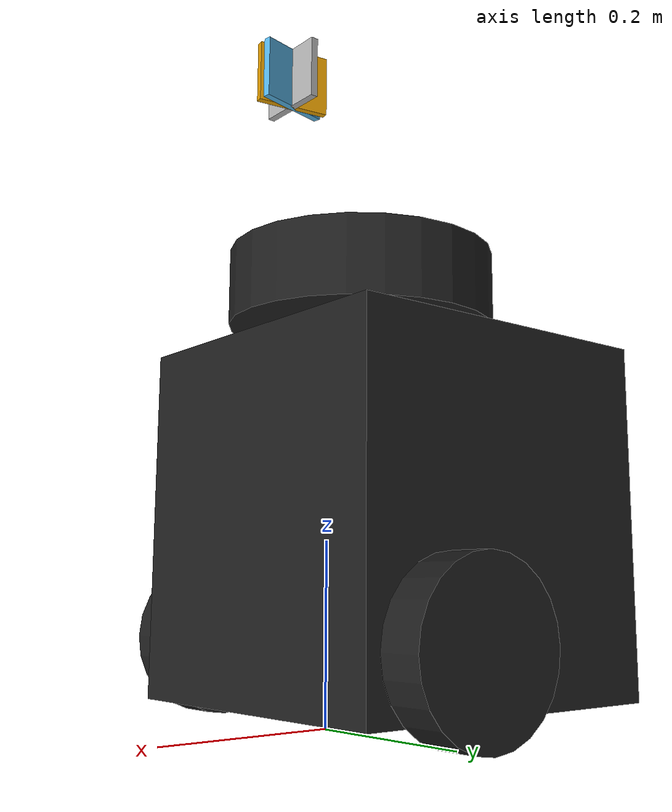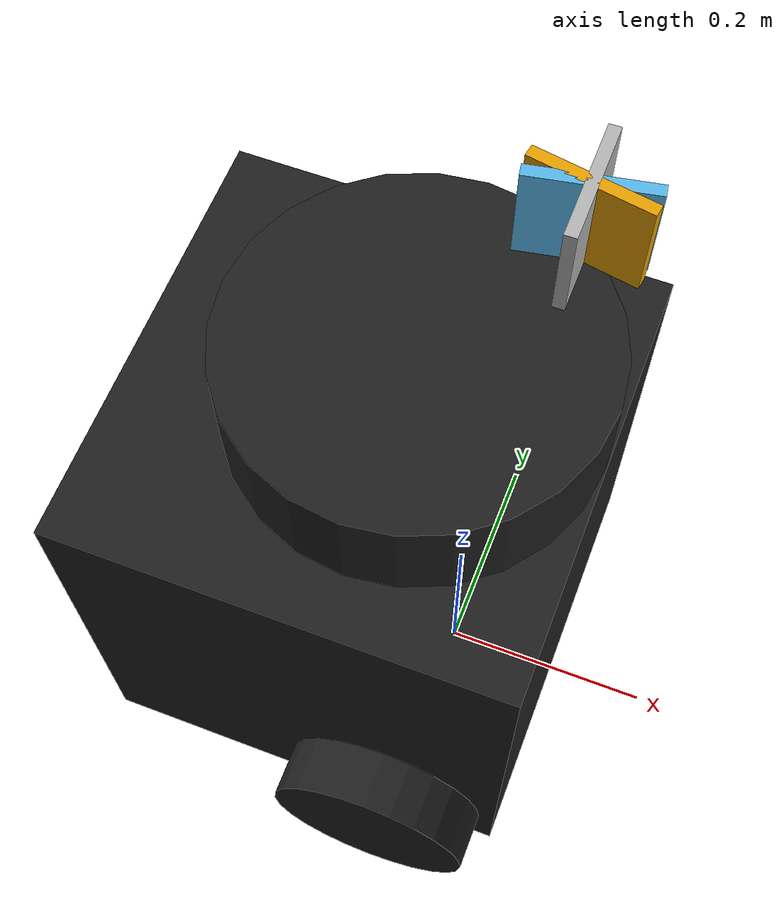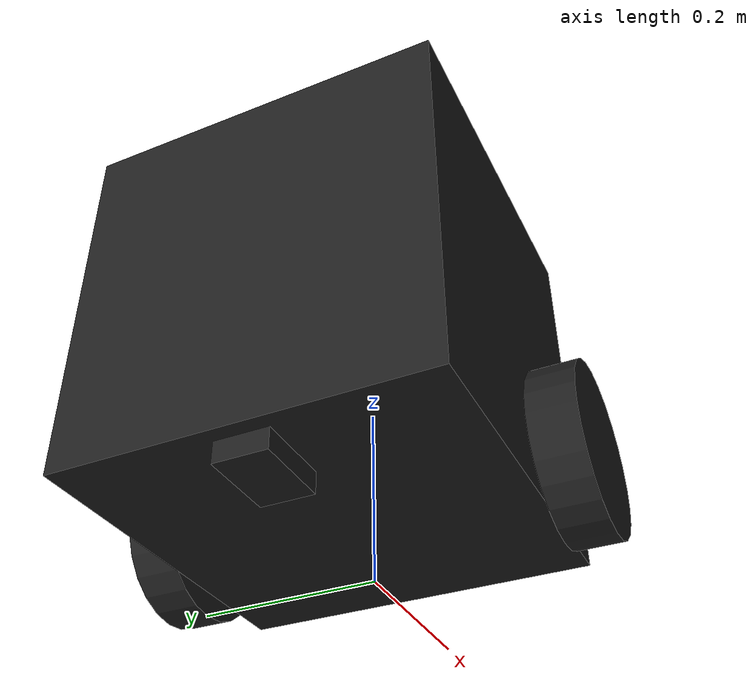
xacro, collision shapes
<?xml version="1.0" ?>
<robot name="turtlebot3_burger" xmlns:xacro="http://ros.org/wiki/xacro">
  <xacro:include filename="$(find turtlebot3_description)/urdf/common_properties.xacro"/>
  <xacro:include filename="$(find turtlebot3_description)/urdf/turtlebot3_burger.gazebo.xacro"/>

  <link name="base_footprint"/>

  <joint name="base_joint" type="fixed">
    <parent link="base_footprint"/>
    <child link="base_link"/>
    <origin xyz="0.0 0.0 0.028" rpy="0 0 0"/>
  </joint>

  <link name="base_link">
    <visual>
      <origin xyz="-0.0896 0 0.0" rpy="0 0 0"/>
      <geometry>
        <mesh filename="package://turtlebot3_description/meshes/bases/burger_base.stl" scale="0.0028 0.0028 0.0028"/>
      </geometry>
      <material name="light_black"/>
    </visual>

    <collision>
      <origin xyz="-0.0896 0 0.196" rpy="0 0 0"/>
      <geometry>
        <box size="0.392 0.392 0.4004"/>
      </geometry>
    </collision>

    <inertial>
      <origin xyz="0 0 0" rpy="0 0 0"/>
      <mass value="103.2125"/>
      <inertia ixx="0.2765" ixy="-1.53675e-03" ixz="4.36725e-03"
               iyy="0.2649125" iyz="-6.2651125e-04"
               izz="0.2508" />
    </inertial>
  </link>
   <joint name="wheel_left_joint" type="continuous">
     <parent link="base_link"/>
    <child link="wheel_left_link"/>
    <origin xyz="0.0 0.224 0.0644" rpy="-1.57 0 0"/>
    <axis xyz="0 0 1"/>
  </joint>

  <link name="wheel_left_link">
    <visual>
      <origin xyz="0 0 0" rpy="1.57 0 0"/>
      <geometry>
        <mesh filename="package://turtlebot3_description/meshes/wheels/left_tire.stl" scale="0.0028 0.0028 0.0028"/>
      </geometry>
      <material name="dark"/>
    </visual>

    <collision>
      <origin xyz="0 0 0" rpy="0 0 0"/>
      <geometry>
        <cylinder length="0.0504" radius="0.0924"/>
      </geometry>
    </collision>

    <inertial>
      <origin xyz="0 0 0" />
      <mass value="3.5623675" />
      <inertia ixx="1.3969475e-03" ixy="-5.296222875e-09" ixz="-7.4225e-07"
               iyy="1.399051625e-03" iyz="-1.800013375e-09"
               izz="2.58906975e-03" />
      </inertial>
  </link>

  <joint name="wheel_right_joint" type="continuous">
    <parent link="base_link"/>
    <child link="wheel_right_link"/>
    <origin xyz="0.0 -0.224 0.0644" rpy="-1.57 0 0"/>
    <axis xyz="0 0 1"/>
  </joint>

  <link name="wheel_right_link">
    <visual>
      <origin xyz="0 0 0" rpy="1.57 0 0"/>
      <geometry>
        <mesh filename="package://turtlebot3_description/meshes/wheels/right_tire.stl" scale="0.0028 0.0028 0.0028"/>
      </geometry>
      <material name="dark"/>
    </visual>

    <collision>
      <origin xyz="0 0 0" rpy="0 0 0"/>
      <geometry>
        <cylinder length="0.0504" radius="0.0924"/>
      </geometry>
    </collision>

    <inertial>
      <origin xyz="0 0 0" />
      <mass value="3.5623675" />
      <inertia ixx="1.3969475e-03" ixy="-5.296222875e-09" ixz="-7.4225e-07"
               iyy="1.399051625e-03" iyz="-1.800013375e-09"
               izz="2.58906975e-03" />
      </inertial>
  </link>

  <joint name="caster_back_joint" type="fixed">
    <parent link="base_link"/>
    <child link="caster_back_link"/>
    <origin xyz="-0.2268 0 -0.0112" rpy="-1.57 0 0"/>
  </joint>

  <link name="caster_back_link">
    <collision>
      <origin xyz="0 0.0028 0" rpy="0 0 0"/>
      <geometry>
        <box size="0.084 0.0252 0.056"/>
      </geometry>
    </collision>
    <visual>
      <origin xyz="0 0.0028 0" rpy="0 0 0"/>
      <geometry>
        <box size="0.084 0.0252 0.056"/>
      </geometry>
    </visual>

    <inertial>
      <origin xyz="0 0 0" />
      <mass value="6.25" />
      <inertia ixx="0.125" ixy="0.0" ixz="0.0"
               iyy="0.125" iyz="0.0"
               izz="0.125" />
    </inertial>
  </link>

  <joint name="imu_joint" type="fixed">
    <parent link="base_link"/>
    <child link="imu_link"/>
    <origin xyz="-0.0896 0 0.1904" rpy="0 0 0"/>
  </joint>

  <link name="imu_link"/>

  <joint name="scan_joint" type="fixed">
    <parent link="base_link"/>
    <child link="base_scan"/>
    <origin xyz="-0.0896 0 0.4816" rpy="0 0 0"/>
  </joint>

  <link name="base_scan">
    <visual>
      <origin xyz="0 0 0.0" rpy="0 0 0"/>
      <geometry>
        <mesh filename="package://turtlebot3_description/meshes/sensors/lds.stl" scale="0.0028 0.0028 0.0028"/>
      </geometry>
      <material name="dark"/>
    </visual>

    <collision>
      <origin xyz="0.042 0 -0.0182" rpy="0 0 0"/>
      <geometry>
        <cylinder length="0.0882" radius="0.154"/>
      </geometry>
    </collision>

    <inertial>
      <mass value="0.57" />
      <origin xyz="0 0 0" />
      <inertia ixx="0.005" ixy="0.0" ixz="0.0"
               iyy="0.005" iyz="0.0"
               izz="0.005" />
    </inertial>
  </link>

  <joint name="camera_joint" type="fixed">
    <parent link="base_link"/>
    <child link="camera_link"/>
    <origin xyz="0.056 0 0.7" rpy="0 0 0"/>
  </joint>

<link name='camera_link'>

<visual name='camera_visual'>
    <origin xyz="0.056 -0.028 -0.056" rpy="0 1.57 0"/>
  <geometry>
    <mesh filename="package://turtlebot3_description/meshes/sensors/ras_cam.dae" scale="2.8 2.8 2.8"/>
  </geometry>
</visual>

<collision name='camera_collision'>
  <pose frame=''>0.056 -0.028 0.294 0 -0 0</pose>
  <geometry>
     <box size="0.0084 0.084 0.07"/>
  </geometry>
</collision>
</link>

  <joint name="camera_joint_2" type="fixed">
    <parent link="base_link"/>
    <child link="camera_link_2"/>
    <origin xyz="0.056 0 0.7" rpy="0 0 1.396"/>
  </joint>

<link name='camera_link_2'>

<visual name='camera_visual_2'>
    <origin xyz="0.056 -0.028 -0.056" rpy="0 1.57 0"/>
  <geometry>
    <mesh filename="package://turtlebot3_description/meshes/sensors/ras_cam.dae" scale="2.8 2.8 2.8"/>
  </geometry>
</visual>

<collision name='camera_collision_2'>
  <pose frame=''>0.056 -0.028 -0.056 0 -0 0</pose>
  <geometry>
     <box size="0.0084 0.084 0.07"/>
  </geometry>
</collision>
</link>

  <joint name="camera_joint_3" type="fixed">
    <parent link="base_link"/>
    <child link="camera_link_3"/>
    <origin xyz="0.056 0 0.7" rpy="0 0 -1.39"/>
  </joint>

<link name='camera_link_3'>

<visual name='camera_visual_3'>
    <origin xyz="0.056 -0.028 -0.056" rpy="0 1.57 0"/>
  <geometry>
    <mesh filename="package://turtlebot3_description/meshes/sensors/ras_cam.dae" scale="2.8 2.8 2.8"/>
  </geometry>
</visual>

<collision name='camera_collision_3'>
  <pose frame=''>0.056 -0.028 -0.056 0 -0 0</pose>
  <geometry>
     <box size="0.0084 0.084 0.07"/>
  </geometry>
</collision>
</link>

</robot>
